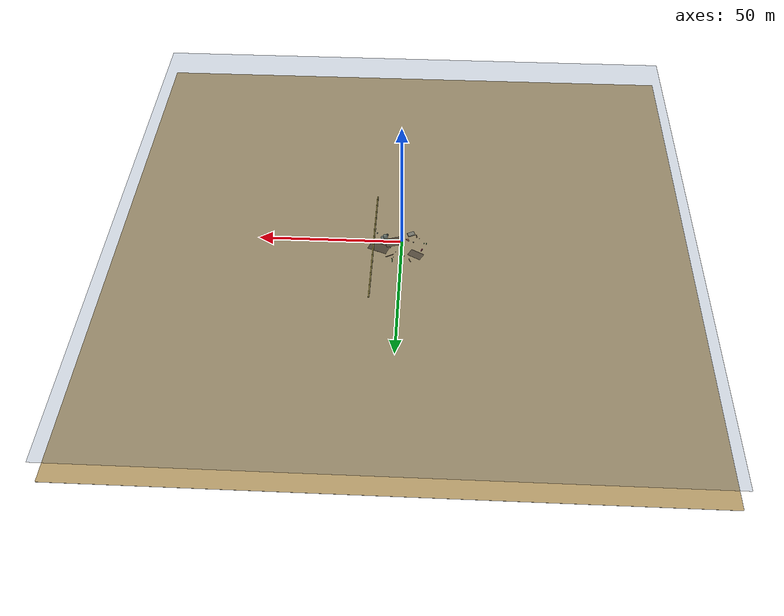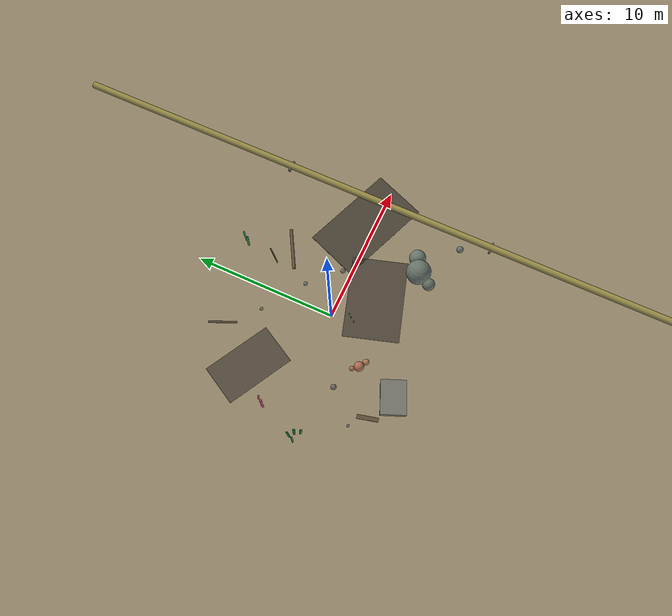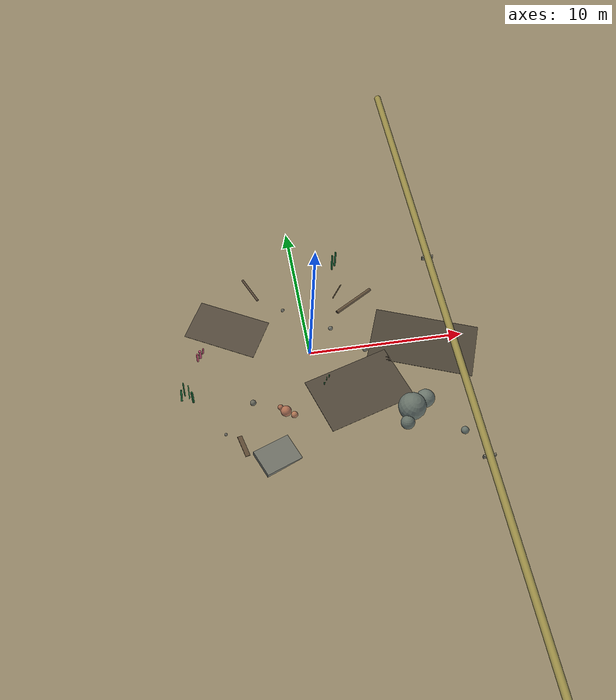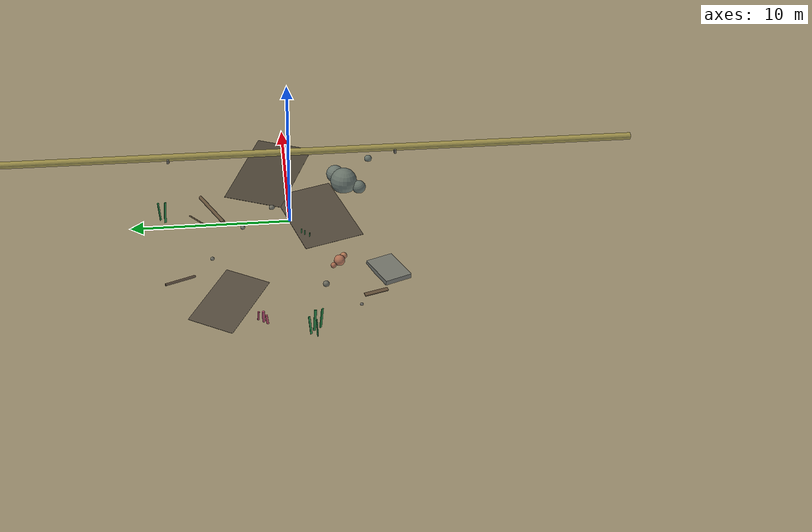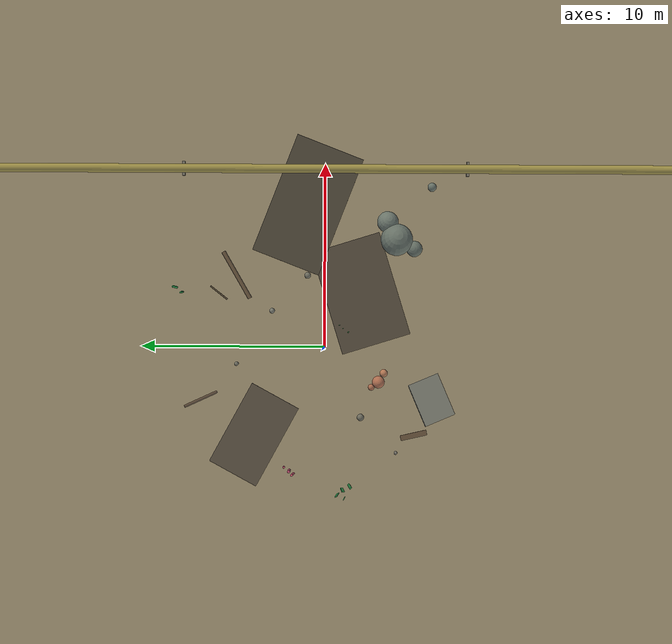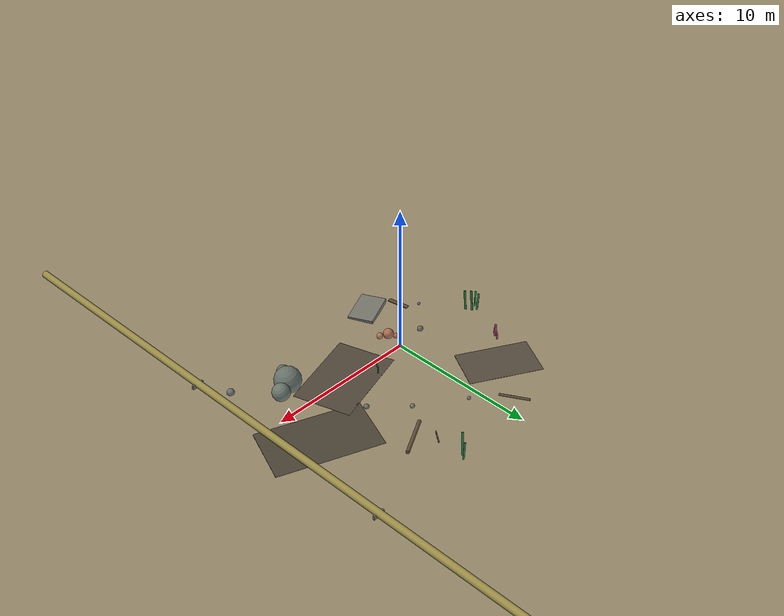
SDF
<?xml version="1.0" ?>
<sdf version="1.9">
  <world name="underwater_world">
    <physics name="2ms" type="dart">
      <max_step_size>0.002</max_step_size>
      <real_time_factor>1.0</real_time_factor>
    </physics>
    <gravity>0 0 0</gravity>

    <scene>
      <ambient>0.35 0.45 0.55 1</ambient>
      <background>0.02 0.08 0.22 1</background>
      <fog><color>0.03 0.10 0.22 1</color><type>linear</type><density>0.01</density><start>15</start><end>120</end></fog>
    </scene>

    <light type="directional" name="ocean_sun">
      <cast_shadows>true</cast_shadows><pose>0 0 50 0 0 0</pose>
      <diffuse>0.55 0.65 0.75 1</diffuse><specular>0.2 0.25 0.3 1</specular>
      <attenuation><range>500</range><constant>0.9</constant><linear>0.002</linear><quadratic>0.0005</quadratic></attenuation>
      <direction>-0.3 0.2 -0.9</direction>
    </light>
    <light type="directional" name="fill">
      <cast_shadows>false</cast_shadows><pose>10 -5 40 0 0 0</pose>
      <diffuse>0.35 0.45 0.50 1</diffuse><specular>0.1 0.12 0.15 1</specular>
      <direction>0.1 -0.1 -1.0</direction>
    </light>
    <light type="point" name="glow">
      <pose>0 0 5 0 0 0</pose>
      <diffuse>0.4 0.5 0.6 1</diffuse><specular>0.1 0.12 0.15 1</specular>
      <attenuation><range>60</range><constant>0.6</constant><linear>0.02</linear><quadratic>0.005</quadratic></attenuation>
    </light>

    <!-- SEABED — bright sandy -->
    <model name="seabed"><static>true</static><pose>0 0 -2 0 0 0</pose>
      <link name="l"><visual name="v"><geometry><box><size>200 200 0.05</size></box></geometry>
        <material><ambient>0.55 0.48 0.32 1</ambient><diffuse>0.72 0.62 0.42 1</diffuse><specular>0.1 0.08 0.05 1</specular></material>
      </visual></link></model>

    <!-- Mud patches — darker brown -->
    <model name="mud1"><static>true</static><pose>3 -2 -1.97 0 0 0.3</pose>
      <link name="l"><visual name="v"><geometry><box><size>6 4 0.02</size></box></geometry>
        <material><ambient>0.25 0.20 0.12 1</ambient><diffuse>0.38 0.30 0.18 1</diffuse></material>
      </visual></link></model>
    <model name="mud2"><static>true</static><pose>-5 4 -1.97 0 0 -0.5</pose>
      <link name="l"><visual name="v"><geometry><box><size>5 3 0.02</size></box></geometry>
        <material><ambient>0.28 0.22 0.14 1</ambient><diffuse>0.40 0.32 0.20 1</diffuse></material>
      </visual></link></model>
    <model name="mud3"><static>true</static><pose>8 1 -1.97 0 0 1.2</pose>
      <link name="l"><visual name="v"><geometry><box><size>4 7 0.02</size></box></geometry>
        <material><ambient>0.22 0.18 0.10 1</ambient><diffuse>0.35 0.28 0.16 1</diffuse></material>
      </visual></link></model>

    <!-- BOULDERS — grey-green mossy stone -->
    <model name="boulder1"><static>true</static><pose>6 -4 -1.5 0.2 0.1 0.8</pose>
      <link name="l"><visual name="v"><geometry><sphere><radius>0.9</radius></sphere></geometry>
        <material><ambient>0.32 0.35 0.28 1</ambient><diffuse>0.50 0.52 0.42 1</diffuse><specular>0.08 0.08 0.06 1</specular></material>
      </visual></link></model>
    <model name="boulder2"><static>true</static><pose>7 -3.5 -1.6 0.3 -0.1 1.5</pose>
      <link name="l"><visual name="v"><geometry><sphere><radius>0.6</radius></sphere></geometry>
        <material><ambient>0.35 0.36 0.30 1</ambient><diffuse>0.52 0.54 0.44 1</diffuse></material>
      </visual></link></model>
    <model name="boulder3"><static>true</static><pose>5.5 -5 -1.7 0.15 0.25 2.1</pose>
      <link name="l"><visual name="v"><geometry><sphere><radius>0.45</radius></sphere></geometry>
        <material><ambient>0.30 0.32 0.26 1</ambient><diffuse>0.48 0.50 0.40 1</diffuse></material>
      </visual></link></model>
    <model name="flat_rock"><static>true</static><pose>-3 -6 -1.85 0.05 0.08 0.4</pose>
      <link name="l"><visual name="v"><geometry><box><size>2.5 1.8 0.3</size></box></geometry>
        <material><ambient>0.38 0.36 0.30 1</ambient><diffuse>0.55 0.52 0.42 1</diffuse><specular>0.1 0.09 0.07 1</specular></material>
      </visual></link></model>

    <!-- Small stones -->
    <model name="s1"><static>true</static><pose>2 3 -1.9 0.4 0.2 1.1</pose>
      <link name="l"><visual name="v"><geometry><sphere><radius>0.15</radius></sphere></geometry>
        <material><ambient>0.40 0.38 0.30 1</ambient><diffuse>0.58 0.55 0.44 1</diffuse></material>
      </visual></link></model>
    <model name="s2"><static>true</static><pose>-1 5 -1.92 0.1 0.3 2.5</pose>
      <link name="l"><visual name="v"><geometry><sphere><radius>0.12</radius></sphere></geometry>
        <material><ambient>0.42 0.38 0.28 1</ambient><diffuse>0.56 0.52 0.40 1</diffuse></material>
      </visual></link></model>
    <model name="s3"><static>true</static><pose>4 1 -1.93 0.2 0.5 0.7</pose>
      <link name="l"><visual name="v"><geometry><sphere><radius>0.18</radius></sphere></geometry>
        <material><ambient>0.36 0.34 0.26 1</ambient><diffuse>0.54 0.50 0.38 1</diffuse></material>
      </visual></link></model>
    <model name="s4"><static>true</static><pose>-4 -2 -1.91 0.6 0.1 3.0</pose>
      <link name="l"><visual name="v"><geometry><sphere><radius>0.2</radius></sphere></geometry>
        <material><ambient>0.34 0.32 0.24 1</ambient><diffuse>0.52 0.48 0.36 1</diffuse></material>
      </visual></link></model>
    <model name="s5"><static>true</static><pose>-6 -4 -1.94 0.3 0.4 1.8</pose>
      <link name="l"><visual name="v"><geometry><sphere><radius>0.1</radius></sphere></geometry>
        <material><ambient>0.38 0.35 0.27 1</ambient><diffuse>0.55 0.50 0.40 1</diffuse></material>
      </visual></link></model>
    <model name="s6"><static>true</static><pose>9 -6 -1.88 0.5 0.2 0.3</pose>
      <link name="l"><visual name="v"><geometry><sphere><radius>0.25</radius></sphere></geometry>
        <material><ambient>0.33 0.34 0.28 1</ambient><diffuse>0.50 0.52 0.42 1</diffuse></material>
      </visual></link></model>

    <!-- CORAL — bright orange/pink -->
    <model name="coral1"><static>true</static><pose>-2 -3 -1.75 0 0 0</pose>
      <link name="l"><visual name="v"><geometry><sphere><radius>0.35</radius></sphere></geometry>
        <material><ambient>0.60 0.35 0.20 1</ambient><diffuse>0.85 0.50 0.30 1</diffuse></material>
      </visual></link></model>
    <model name="coral2"><static>true</static><pose>-1.5 -3.3 -1.82 0.1 0.05 0.3</pose>
      <link name="l"><visual name="v"><geometry><sphere><radius>0.22</radius></sphere></geometry>
        <material><ambient>0.65 0.38 0.22 1</ambient><diffuse>0.88 0.55 0.32 1</diffuse></material>
      </visual></link></model>
    <model name="coral3"><static>true</static><pose>-2.3 -2.6 -1.88 0.08 0.03 0.9</pose>
      <link name="l"><visual name="v"><geometry><sphere><radius>0.18</radius></sphere></geometry>
        <material><ambient>0.58 0.32 0.18 1</ambient><diffuse>0.82 0.48 0.28 1</diffuse></material>
      </visual></link></model>
    <!-- Tube coral — pink/red -->
    <model name="tube1"><static>true</static><pose>-7 2 -1.6 0 0 0</pose>
      <link name="l"><visual name="v"><geometry><cylinder><radius>0.08</radius><length>0.8</length></cylinder></geometry>
        <material><ambient>0.6 0.2 0.3 1</ambient><diffuse>0.85 0.30 0.40 1</diffuse></material>
      </visual></link></model>
    <model name="tube2"><static>true</static><pose>-6.8 2.3 -1.7 0.1 0.05 0.5</pose>
      <link name="l"><visual name="v"><geometry><cylinder><radius>0.06</radius><length>0.6</length></cylinder></geometry>
        <material><ambient>0.55 0.18 0.25 1</ambient><diffuse>0.80 0.28 0.35 1</diffuse></material>
      </visual></link></model>
    <model name="tube3"><static>true</static><pose>-7.2 1.8 -1.65 -0.05 0.1 1.2</pose>
      <link name="l"><visual name="v"><geometry><cylinder><radius>0.07</radius><length>0.7</length></cylinder></geometry>
        <material><ambient>0.65 0.22 0.28 1</ambient><diffuse>0.90 0.32 0.38 1</diffuse></material>
      </visual></link></model>

    <!-- KELP — bright green -->
    <model name="k1"><static>true</static><pose>-8 -1 -1.2 0.05 0.03 0</pose>
      <link name="l"><visual name="v"><geometry><box><size>0.06 0.15 1.6</size></box></geometry>
        <material><ambient>0.12 0.42 0.15 1</ambient><diffuse>0.18 0.62 0.22 1</diffuse></material>
      </visual></link></model>
    <model name="k2"><static>true</static><pose>-8.3 -0.7 -1.3 -0.08 0.04 0.3</pose>
      <link name="l"><visual name="v"><geometry><box><size>0.05 0.12 1.4</size></box></geometry>
        <material><ambient>0.14 0.45 0.18 1</ambient><diffuse>0.20 0.65 0.25 1</diffuse></material>
      </visual></link></model>
    <model name="k3"><static>true</static><pose>-7.8 -1.4 -1.25 0.06 -0.05 0.7</pose>
      <link name="l"><visual name="v"><geometry><box><size>0.07 0.14 1.5</size></box></geometry>
        <material><ambient>0.10 0.40 0.12 1</ambient><diffuse>0.16 0.58 0.20 1</diffuse></material>
      </visual></link></model>
    <model name="k4"><static>true</static><pose>-8.5 -1.1 -1.35 0.03 0.07 1.1</pose>
      <link name="l"><visual name="v"><geometry><box><size>0.05 0.10 1.3</size></box></geometry>
        <material><ambient>0.13 0.44 0.16 1</ambient><diffuse>0.19 0.64 0.24 1</diffuse></material>
      </visual></link></model>
    <model name="k5"><static>true</static><pose>3 8 -1.15 0.04 -0.06 0.5</pose>
      <link name="l"><visual name="v"><geometry><box><size>0.06 0.13 1.7</size></box></geometry>
        <material><ambient>0.11 0.40 0.14 1</ambient><diffuse>0.17 0.60 0.22 1</diffuse></material>
      </visual></link></model>
    <model name="k6"><static>true</static><pose>3.3 8.4 -1.28 -0.03 0.05 0.8</pose>
      <link name="l"><visual name="v"><geometry><box><size>0.05 0.11 1.4</size></box></geometry>
        <material><ambient>0.12 0.42 0.15 1</ambient><diffuse>0.18 0.62 0.23 1</diffuse></material>
      </visual></link></model>
    <!-- Short seagrass -->
    <model name="g1"><static>true</static><pose>1 -1 -1.8 0.02 0.01 0</pose>
      <link name="l"><visual name="v"><geometry><box><size>0.03 0.08 0.4</size></box></geometry>
        <material><ambient>0.15 0.38 0.12 1</ambient><diffuse>0.22 0.55 0.20 1</diffuse></material>
      </visual></link></model>
    <model name="g2"><static>true</static><pose>1.2 -0.8 -1.82 -0.03 0.02 0.4</pose>
      <link name="l"><visual name="v"><geometry><box><size>0.03 0.06 0.35</size></box></geometry>
        <material><ambient>0.16 0.40 0.14 1</ambient><diffuse>0.24 0.58 0.22 1</diffuse></material>
      </visual></link></model>
    <model name="g3"><static>true</static><pose>0.8 -1.3 -1.83 0.04 -0.01 0.8</pose>
      <link name="l"><visual name="v"><geometry><box><size>0.04 0.07 0.3</size></box></geometry>
        <material><ambient>0.12 0.36 0.10 1</ambient><diffuse>0.20 0.52 0.18 1</diffuse></material>
      </visual></link></model>

    <!-- SUNKEN WOOD — warm brown -->
    <model name="log1"><static>true</static><pose>4 5 -1.85 0.08 1.52 0.6</pose>
      <link name="l"><visual name="v"><geometry><cylinder><radius>0.12</radius><length>3.0</length></cylinder></geometry>
        <material><ambient>0.30 0.20 0.10 1</ambient><diffuse>0.48 0.35 0.18 1</diffuse></material>
      </visual></link></model>
    <model name="branch1"><static>true</static><pose>3 6 -1.88 0.3 1.4 1.2</pose>
      <link name="l"><visual name="v"><geometry><cylinder><radius>0.04</radius><length>1.2</length></cylinder></geometry>
        <material><ambient>0.32 0.22 0.12 1</ambient><diffuse>0.50 0.38 0.20 1</diffuse></material>
      </visual></link></model>
    <model name="plank1"><static>true</static><pose>-5 -5 -1.9 0.02 0.05 1.8</pose>
      <link name="l"><visual name="v"><geometry><box><size>1.5 0.3 0.05</size></box></geometry>
        <material><ambient>0.28 0.18 0.08 1</ambient><diffuse>0.45 0.32 0.16 1</diffuse></material>
      </visual></link></model>
    <model name="log2"><static>true</static><pose>-3 7 -1.87 0.1 1.5 2.1</pose>
      <link name="l"><visual name="v"><geometry><cylinder><radius>0.08</radius><length>2.0</length></cylinder></geometry>
        <material><ambient>0.26 0.18 0.10 1</ambient><diffuse>0.44 0.32 0.18 1</diffuse></material>
      </visual></link></model>

    <!-- PIPELINE — yellow/rusty -->
    <model name="pipeline"><static>true</static><pose>10 0 -1.7 1.5708 0 0</pose>
      <link name="l"><visual name="v"><geometry><cylinder><radius>0.25</radius><length>50.0</length></cylinder></geometry>
        <material><ambient>0.50 0.45 0.15 1</ambient><diffuse>0.75 0.65 0.25 1</diffuse><specular>0.15 0.12 0.08 1</specular></material>
      </visual></link></model>
    <model name="psup1"><static>true</static><pose>10 -8 -1.85 0 0 0</pose>
      <link name="l"><visual name="v"><geometry><box><size>0.8 0.15 0.3</size></box></geometry>
        <material><ambient>0.35 0.32 0.25 1</ambient><diffuse>0.55 0.50 0.38 1</diffuse></material>
      </visual></link></model>
    <model name="psup2"><static>true</static><pose>10 8 -1.85 0 0 0</pose>
      <link name="l"><visual name="v"><geometry><box><size>0.8 0.15 0.3</size></box></geometry>
        <material><ambient>0.35 0.32 0.25 1</ambient><diffuse>0.55 0.50 0.38 1</diffuse></material>
      </visual></link></model>

    <!-- Water surface -->
    <model name="water_surface"><static>true</static><pose>0 0 8 0 0 0</pose>
      <link name="l"><visual name="v"><geometry><box><size>200 200 0.01</size></box></geometry>
        <material><ambient>0.08 0.18 0.35 0.3</ambient><diffuse>0.12 0.25 0.45 0.2</diffuse><specular>0.3 0.35 0.4 0.5</specular></material>
      </visual></link></model>

    <!-- PLUGINS -->
    <plugin filename="gz-sim-physics-system" name="gz::sim::systems::Physics"/>
    <plugin filename="gz-sim-user-commands-system" name="gz::sim::systems::UserCommands"/>
    <plugin filename="gz-sim-scene-broadcaster-system" name="gz::sim::systems::SceneBroadcaster"/>
    <plugin filename="gz-sim-imu-system" name="gz::sim::systems::Imu"/>
    <plugin filename="gz-sim-apply-link-wrench-system" name="gz::sim::systems::ApplyLinkWrench"/>
  </world>
</sdf>
